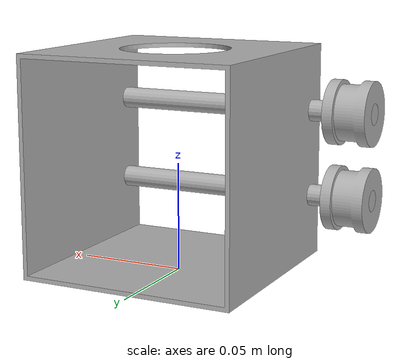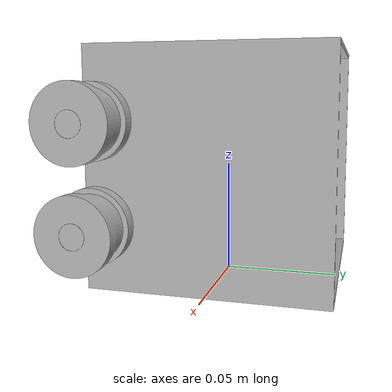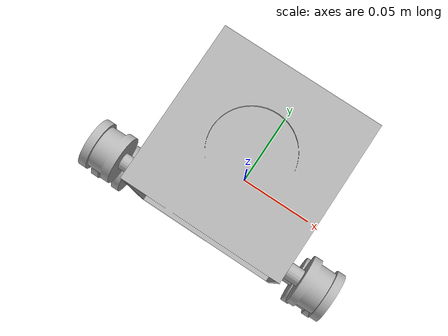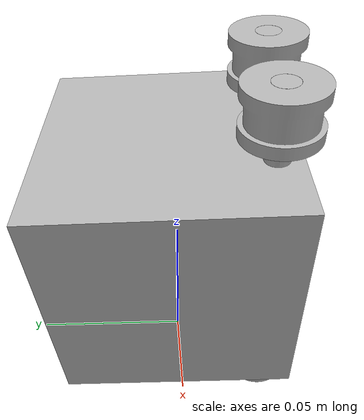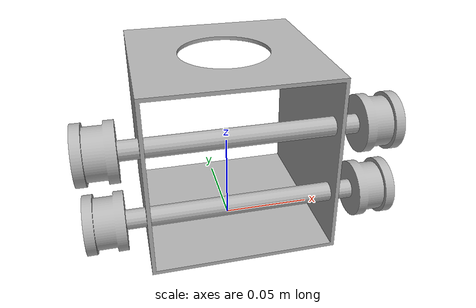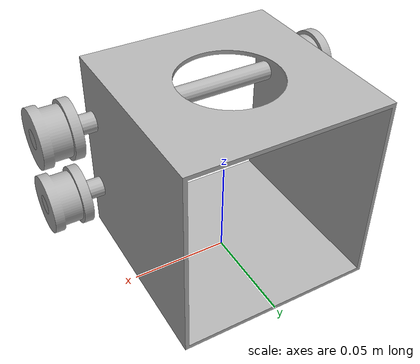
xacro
<?xml version="1.0" ?>
<robot name="test_robot2_assem" xmlns:xacro="http://www.ros.org/wiki/xacro">

<xacro:include filename="$(find test_robot2_assem_description)/urdf/materials.xacro" />
<xacro:include filename="$(find test_robot2_assem_description)/urdf/test_robot2_assem.trans" />
<xacro:include filename="$(find test_robot2_assem_description)/urdf/test_robot2_assem.gazebo" />
<link name="base_link">
  <inertial>
    <origin rpy="0 0 0" xyz="1.0007008474989684e-16 0.0024718672211768854 0.04992269434636615"/>
    <mass value="0.1979037709481497"/>
    <inertia ixx="0.00048" ixy="0.0" ixz="-0.0" iyy="0.00064" iyz="-0.0" izz="0.000501"/>
  </inertial>
  <visual>
    <origin rpy="0 0 0" xyz="0 0 0"/>
    <geometry>
      <mesh filename="package://test_robot2_assem_description/meshes/base_link.stl" scale="0.001 0.001 0.001"/>
    </geometry>
    <material name="silver"/>
  </visual>
  <collision>
    <origin rpy="0 0 0" xyz="0 0 0"/>
    <geometry>
      <mesh filename="package://test_robot2_assem_description/meshes/base_link.stl" scale="0.001 0.001 0.001"/>
    </geometry>
  </collision>
</link>

<link name="test_robot_shaft_v4__1__1">
  <inertial>
    <origin rpy="0 0 0" xyz="0.049999999999999774 -4.787266047606709e-07 4.680090810171844e-07"/>
    <mass value="0.03367787324648258"/>
    <inertia ixx="0.0" ixy="0.0" ixz="0.0" iyy="7.2e-05" iyz="0.0" izz="7.2e-05"/>
  </inertial>
  <visual>
    <origin rpy="0 0 0" xyz="0.05 0.037868 -0.072528"/>
    <geometry>
      <mesh filename="package://test_robot2_assem_description/meshes/test_robot_shaft_v4__1__1.stl" scale="0.001 0.001 0.001"/>
    </geometry>
    <material name="silver"/>
  </visual>
  <collision>
    <origin rpy="0 0 0" xyz="0.05 0.037868 -0.072528"/>
    <geometry>
      <mesh filename="package://test_robot2_assem_description/meshes/test_robot_shaft_v4__1__1.stl" scale="0.001 0.001 0.001"/>
    </geometry>
  </collision>
</link>

<link name="test_robot_shaft_v4_1">
  <inertial>
    <origin rpy="0 0 0" xyz="0.049999999999999774 -4.78726604948021e-07 4.6800908099636773e-07"/>
    <mass value="0.03367787324648258"/>
    <inertia ixx="0.0" ixy="0.0" ixz="0.0" iyy="7.2e-05" iyz="-0.0" izz="7.2e-05"/>
  </inertial>
  <visual>
    <origin rpy="0 0 0" xyz="0.05 0.037868 -0.032528"/>
    <geometry>
      <mesh filename="package://test_robot2_assem_description/meshes/test_robot_shaft_v4_1.stl" scale="0.001 0.001 0.001"/>
    </geometry>
    <material name="silver"/>
  </visual>
  <collision>
    <origin rpy="0 0 0" xyz="0.05 0.037868 -0.032528"/>
    <geometry>
      <mesh filename="package://test_robot2_assem_description/meshes/test_robot_shaft_v4_1.stl" scale="0.001 0.001 0.001"/>
    </geometry>
  </collision>
</link>

<link name="test_robot_wheel_v4__2__1">
  <inertial>
    <origin rpy="0 0 0" xyz="-0.010000000000000217 -4.787267571804144e-07 4.680090810171844e-07"/>
    <mass value="0.028962970991975173"/>
    <inertia ixx="3e-06" ixy="-0.0" ixz="0.0" iyy="3e-06" iyz="0.0" izz="3e-06"/>
  </inertial>
  <visual>
    <origin rpy="0 0 0" xyz="-0.08 0.037868 -0.072528"/>
    <geometry>
      <mesh filename="package://test_robot2_assem_description/meshes/test_robot_wheel_v4__2__1.stl" scale="0.001 0.001 0.001"/>
    </geometry>
    <material name="silver"/>
  </visual>
  <collision>
    <origin rpy="0 0 0" xyz="-0.08 0.037868 -0.072528"/>
    <geometry>
      <mesh filename="package://test_robot2_assem_description/meshes/test_robot_wheel_v4__2__1.stl" scale="0.001 0.001 0.001"/>
    </geometry>
  </collision>
</link>

<link name="test_robot_wheel_v4_1">
  <inertial>
    <origin rpy="0 0 0" xyz="-0.010000000000000217 -4.787267573608256e-07 4.6800908098942884e-07"/>
    <mass value="0.028962970991975173"/>
    <inertia ixx="3e-06" ixy="-0.0" ixz="0.0" iyy="3e-06" iyz="-0.0" izz="3e-06"/>
  </inertial>
  <visual>
    <origin rpy="0 0 0" xyz="-0.08 0.037868 -0.032528"/>
    <geometry>
      <mesh filename="package://test_robot2_assem_description/meshes/test_robot_wheel_v4_1.stl" scale="0.001 0.001 0.001"/>
    </geometry>
    <material name="silver"/>
  </visual>
  <collision>
    <origin rpy="0 0 0" xyz="-0.08 0.037868 -0.032528"/>
    <geometry>
      <mesh filename="package://test_robot2_assem_description/meshes/test_robot_wheel_v4_1.stl" scale="0.001 0.001 0.001"/>
    </geometry>
  </collision>
</link>

<link name="test_robot_wheel_v4__1__1">
  <inertial>
    <origin rpy="0 0 0" xyz="0.009999999999999634 -4.787267378486559e-07 4.680090080755317e-07"/>
    <mass value="0.028962970991975173"/>
    <inertia ixx="3e-06" ixy="-0.0" ixz="0.0" iyy="3e-06" iyz="-0.0" izz="3e-06"/>
  </inertial>
  <visual>
    <origin rpy="0 0 0" xyz="0.08 0.037868 -0.072528"/>
    <geometry>
      <mesh filename="package://test_robot2_assem_description/meshes/test_robot_wheel_v4__1__1.stl" scale="0.001 0.001 0.001"/>
    </geometry>
    <material name="silver"/>
  </visual>
  <collision>
    <origin rpy="0 0 0" xyz="0.08 0.037868 -0.072528"/>
    <geometry>
      <mesh filename="package://test_robot2_assem_description/meshes/test_robot_wheel_v4__1__1.stl" scale="0.001 0.001 0.001"/>
    </geometry>
  </collision>
</link>

<link name="test_robot_wheel_v4__3__1">
  <inertial>
    <origin rpy="0 0 0" xyz="0.009999999999999773 -4.787267565073416e-07 4.680090810171844e-07"/>
    <mass value="0.028962970991975173"/>
    <inertia ixx="3e-06" ixy="-0.0" ixz="-0.0" iyy="3e-06" iyz="-0.0" izz="3e-06"/>
  </inertial>
  <visual>
    <origin rpy="0 0 0" xyz="0.08 0.037868 -0.032528"/>
    <geometry>
      <mesh filename="package://test_robot2_assem_description/meshes/test_robot_wheel_v4__3__1.stl" scale="0.001 0.001 0.001"/>
    </geometry>
    <material name="silver"/>
  </visual>
  <collision>
    <origin rpy="0 0 0" xyz="0.08 0.037868 -0.032528"/>
    <geometry>
      <mesh filename="package://test_robot2_assem_description/meshes/test_robot_wheel_v4__3__1.stl" scale="0.001 0.001 0.001"/>
    </geometry>
  </collision>
</link>

<joint name="«1" type="fixed">
  <origin rpy="0 0 0" xyz="-0.05 -0.037868 0.072528"/>
  <parent link="base_link"/>
  <child link="test_robot_shaft_v4__1__1"/>
</joint>

<joint name="«2" type="fixed">
  <origin rpy="0 0 0" xyz="-0.05 -0.037868 0.032528"/>
  <parent link="base_link"/>
  <child link="test_robot_shaft_v4_1"/>
</joint>

<joint name="ñ]3" type="continuous">
  <origin rpy="0 0 0" xyz="0.13 0.0 0.0"/>
  <parent link="test_robot_shaft_v4__1__1"/>
  <child link="test_robot_wheel_v4__2__1"/>
  <axis xyz="-1.0 0.0 0.0"/>
</joint>

<joint name="ñ]4" type="continuous">
  <origin rpy="0 0 0" xyz="0.13 0.0 0.0"/>
  <parent link="test_robot_shaft_v4_1"/>
  <child link="test_robot_wheel_v4_1"/>
  <axis xyz="-1.0 0.0 0.0"/>
</joint>

<joint name="ñ]5" type="continuous">
  <origin rpy="0 0 0" xyz="-0.03 0.0 0.0"/>
  <parent link="test_robot_shaft_v4__1__1"/>
  <child link="test_robot_wheel_v4__1__1"/>
  <axis xyz="-1.0 0.0 0.0"/>
</joint>

<joint name="ñ]6" type="continuous">
  <origin rpy="0 0 0" xyz="-0.03 0.0 0.0"/>
  <parent link="test_robot_shaft_v4_1"/>
  <child link="test_robot_wheel_v4__3__1"/>
  <axis xyz="-1.0 0.0 0.0"/>
</joint>

</robot>

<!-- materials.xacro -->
<robot name="test_robot2_assem" xmlns:xacro="http://www.ros.org/wiki/xacro" >

<material name="silver">
  <color rgba="0.700 0.700 0.700 1.000"/>
</material>

</robot>

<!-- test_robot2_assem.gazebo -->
<robot name="test_robot2_assem" xmlns:xacro="http://www.ros.org/wiki/xacro" >

<xacro:property name="body_color" value="Gazebo/Silver" />

<gazebo>
  <plugin filename="libgazebo_ros_control.so" name="control"/>
</gazebo>
<gazebo reference="base_link">
  <material>${body_color}</material>
  <mu1>0.2</mu1>
  <mu2>0.2</mu2>
  <selfCollide>true</selfCollide>
  <gravity>true</gravity>
</gazebo>

<gazebo reference="test_robot_shaft_v4__1__1">
  <material>${body_color}</material>
  <mu1>0.2</mu1>
  <mu2>0.2</mu2>
  <selfCollide>true</selfCollide>
</gazebo>

<gazebo reference="test_robot_shaft_v4_1">
  <material>${body_color}</material>
  <mu1>0.2</mu1>
  <mu2>0.2</mu2>
  <selfCollide>true</selfCollide>
</gazebo>

<gazebo reference="test_robot_wheel_v4__2__1">
  <material>${body_color}</material>
  <mu1>0.2</mu1>
  <mu2>0.2</mu2>
  <selfCollide>true</selfCollide>
</gazebo>

<gazebo reference="test_robot_wheel_v4_1">
  <material>${body_color}</material>
  <mu1>0.2</mu1>
  <mu2>0.2</mu2>
  <selfCollide>true</selfCollide>
</gazebo>

<gazebo reference="test_robot_wheel_v4__1__1">
  <material>${body_color}</material>
  <mu1>0.2</mu1>
  <mu2>0.2</mu2>
  <selfCollide>true</selfCollide>
</gazebo>

<gazebo reference="test_robot_wheel_v4__3__1">
  <material>${body_color}</material>
  <mu1>0.2</mu1>
  <mu2>0.2</mu2>
  <selfCollide>true</selfCollide>
</gazebo>

</robot>
